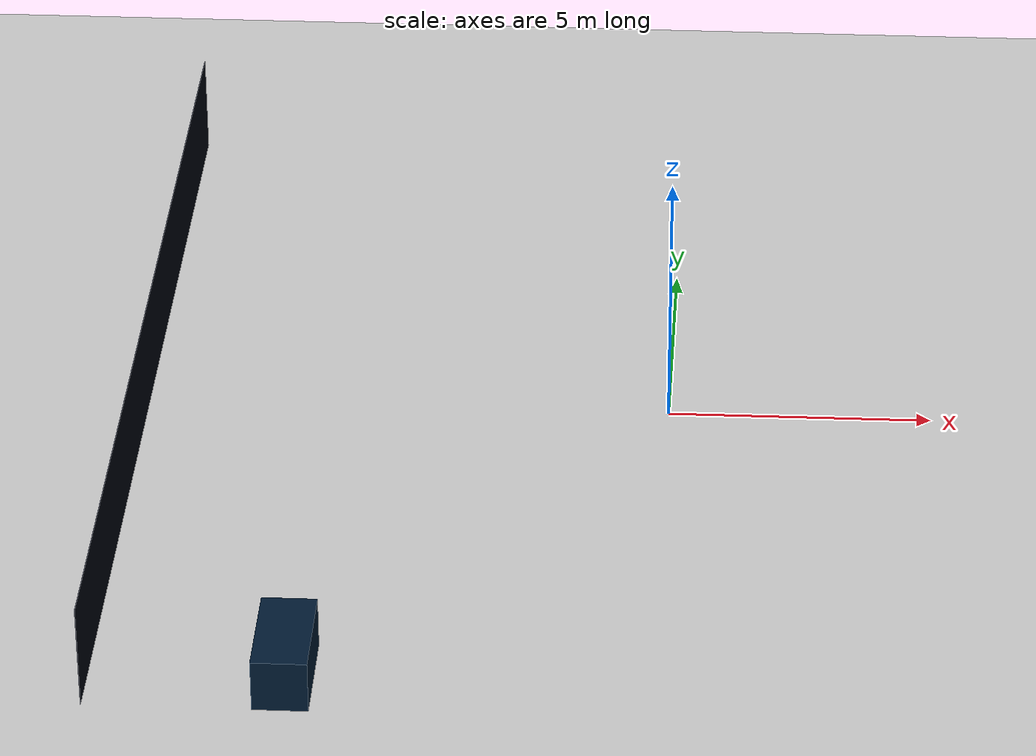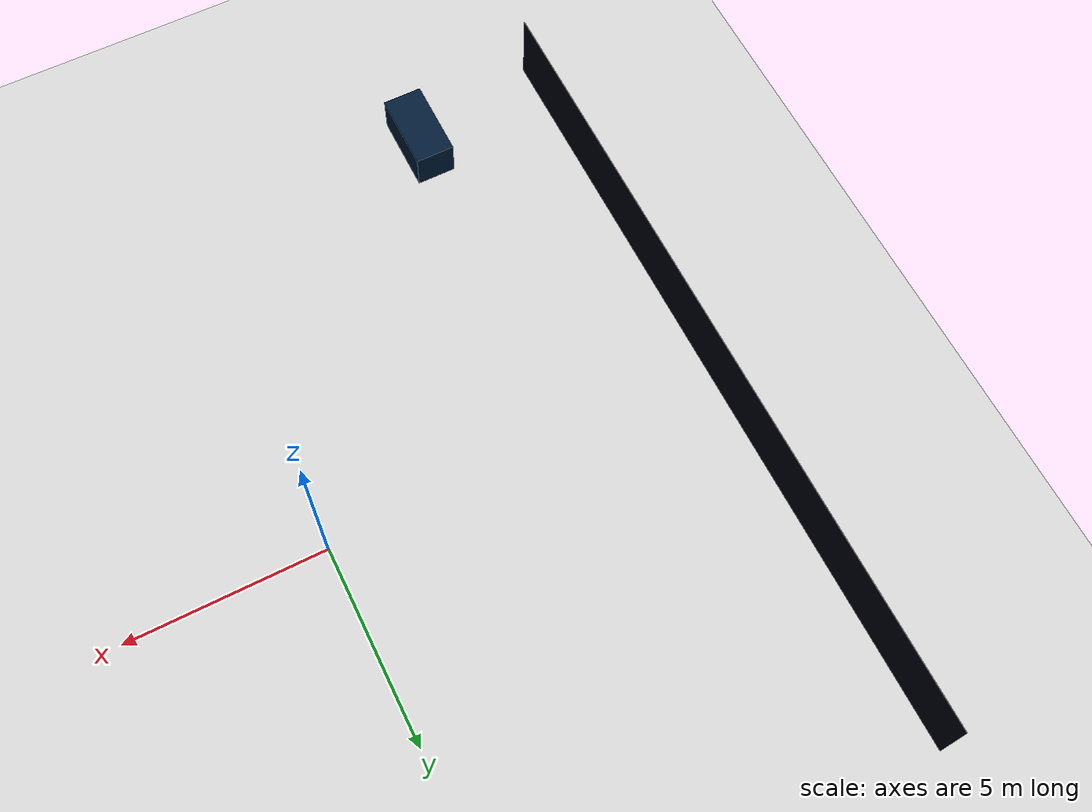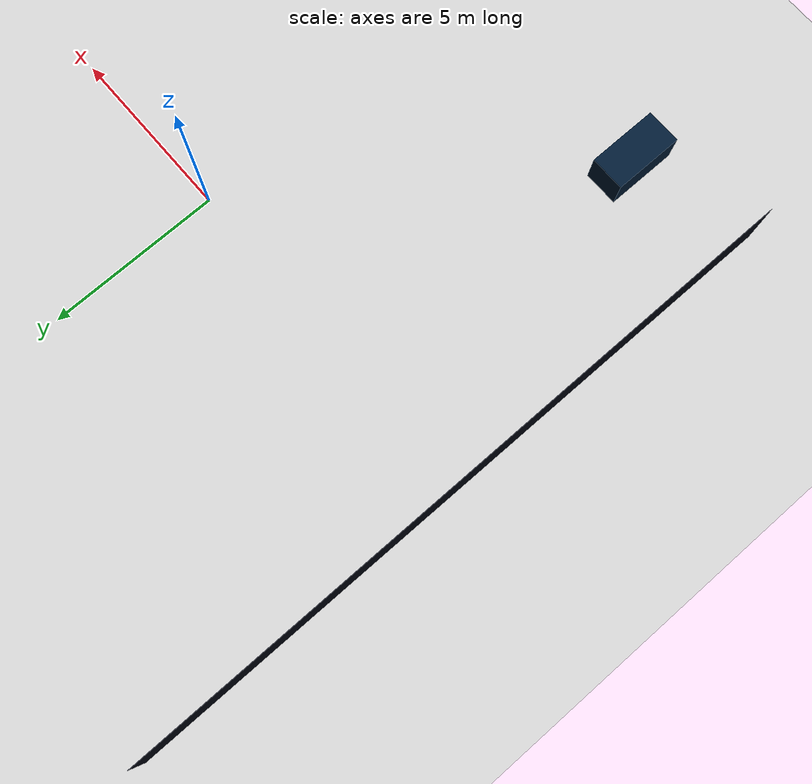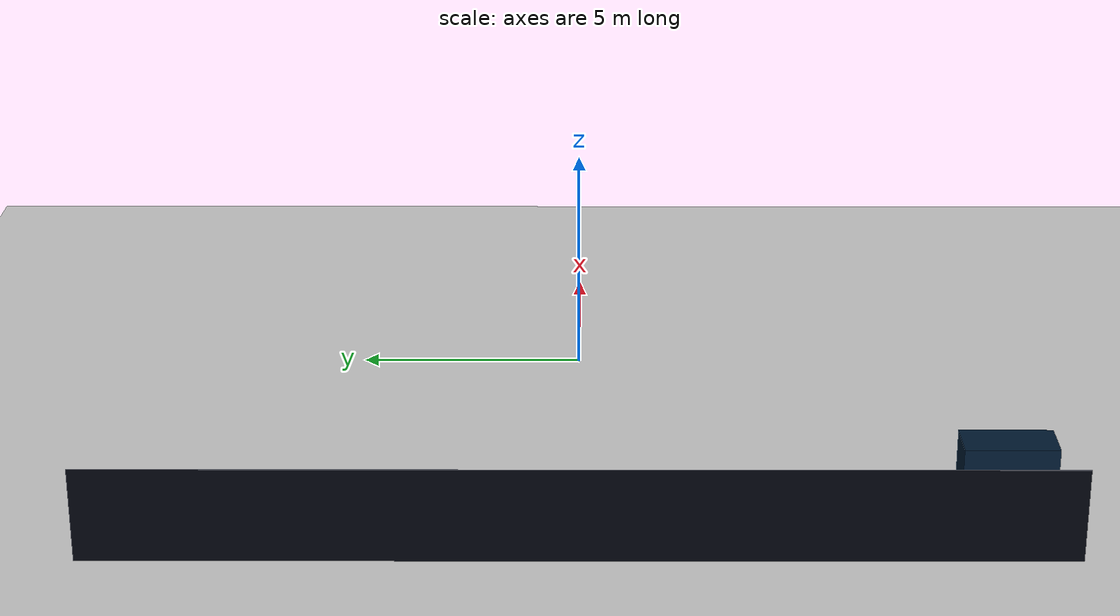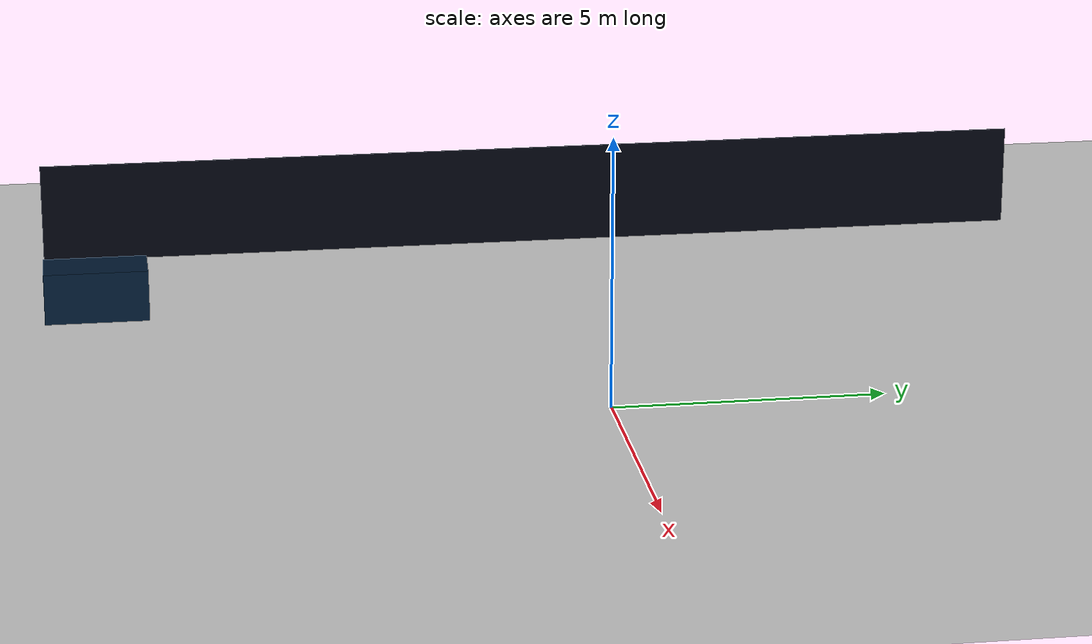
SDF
<?xml version="1.0"?>
<sdf version='1.8'>
    <world name='maze'>
        <physics name='1ms' type='ignored'>
            <max_step_size>0.003</max_step_size>
            <real_time_factor>1</real_time_factor>
            <real_time_update_rate>1000</real_time_update_rate>
        </physics>
        <plugin name='ignition::gazebo::systems::Physics' filename='ignition-gazebo-physics-system' />
        <plugin name='ignition::gazebo::systems::UserCommands' filename='ignition-gazebo-user-commands-system' />
        <plugin name='ignition::gazebo::systems::SceneBroadcaster' filename='ignition-gazebo-scene-broadcaster-system' />
        <plugin name='ignition::gazebo::systems::Contact' filename='ignition-gazebo-contact-system' />
        <light name='sun' type='directional'>
            <cast_shadows>1</cast_shadows>
            <pose>0 0 10 0 -0 0</pose>
            <diffuse>0.8 0.8 0.8 1</diffuse>
            <specular>0.2 0.2 0.2 1</specular>
            <attenuation>
                <range>1000</range>
                <constant>0.90000000000000002</constant>
                <linear>0.01</linear>
                <quadratic>0.001</quadratic>
            </attenuation>
            <direction>-0.5 0.1 -0.9</direction>
            <spot>
                <inner_angle>0</inner_angle>
                <outer_angle>0</outer_angle>
                <falloff>0</falloff>
            </spot>
        </light>
        <gravity>0 0 -9.8</gravity>
        <magnetic_field>6e-06 2.3e-05 -4.2e-05</magnetic_field>
        <atmosphere type='adiabatic' />
        <scene>
            <ambient>0.4 0.4 0.4 1</ambient>
            <background>0.7 0.7 0.7 1</background>
            <shadows>1</shadows>
        </scene>
        <model name='ground_plane'>
            <static>1</static>
            <link name='link'>
                <collision name='collision'>
                    <geometry>
                        <plane>
                            <normal>0 0 1</normal>
                            <size>100 100</size>
                        </plane>
                    </geometry>
                    <surface>
                        <friction>
                            <ode />
                        </friction>
                        <bounce />
                        <contact />
                    </surface>
                </collision>
                <visual name='visual'>
                    <geometry>
                        <plane>
                            <normal>0 0 1</normal>
                            <size>100 100</size>
                        </plane>
                    </geometry>
                    <material>
                        <ambient>0.8 0.8 0.8 1</ambient>
                        <diffuse>0.8 0.8 0.8 1</diffuse>
                        <specular>0.8 0.8 0.8 1</specular>
                    </material>
                    <plugin name='__default__' filename='__default__' />
                </visual>
            </link>
            <plugin name='__default__' filename='__default__' />
            <pose>0 0 0 0 -0 0</pose>
        </model>

        <model name='border'>
            <pose>0 0 1 0 0 0</pose>
            <static>true</static>
            <link name='wall1'>
                <pose>-10.005 0 0 0 0 0</pose>
                <static>true</static>
                <collision name='wall1_collision'>
                    <geometry>
                        <box>
                            <size>0.01 20 2</size>
                        </box>
                    </geometry>
                </collision>
                <visual name='wall1_visual'>
                    <geometry>
                        <box>
                            <size>0.01 20 2</size>
                        </box>
                    </geometry>
                    <material>
                        <ambient>0.1 0.1 0.1 1</ambient>
                        <diffuse>0 0.01 0.05 1</diffuse>
                        <specular>0 0.01 0.05 1</specular>
                    </material>
                </visual>
            </link>
        </model>

        <model name='obstacles'>
            <pose>0 0 0.5 0 0 0</pose>
            <static>true</static>
            <link name='wall1'>
                <pose>-6.5 -9 0 0 0 0</pose>
                <static>true</static>
                <collision name='wall1_collision'>
                    <geometry>
                        <box>
                            <size>1 2 1</size>
                        </box>
                    </geometry>
                </collision>
                <visual name='wall1_visual'>
                    <geometry>
                        <box>
                            <size>1 2 1</size>
                        </box>
                    </geometry>
                    <material>
                        <ambient>0.1 0.1 0.1 1</ambient>
                        <diffuse>0 0.1 0.2 1</diffuse>
                        <specular>0 0.01 0.05 1</specular>
                    </material>
                </visual>
            </link>

        </model>
    </world>
</sdf>
